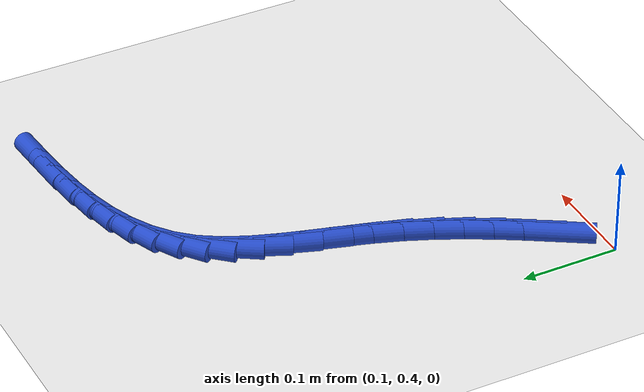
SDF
<sdf version="1.6">
 <world name="default">
  <model name="ground_plane">
   <static>1</static>
   <link name="link">
    <collision name="collision">
     <geometry><plane><normal>0 0 1</normal><size>100 100</size></plane></geometry>
     <surface><friction><ode><mu>100</mu><mu2>50</mu2></ode></friction></surface>
    </collision>
    <visual name="visual">
     <cast_shadows>0</cast_shadows>
     <geometry><plane><normal>0 0 1</normal><size>100 100</size></plane></geometry>
     <material>
      <script><uri>file://media/materials/scripts/gazebo.material</uri><name>Gazebo/WhiteGlow</name></script>
     </material>
    </visual>
   </link>
  </model>
  <model name="line">
   <link name="link_17">
    <pose>0.14076407731380272 0.4437502137127334 0.01 0 1.57 1.0201691608739643</pose>
    <collision name="collision">
     <geometry><cylinder><radius>0.01</radius><length>0.08</length></cylinder></geometry>
    </collision>
    <visual name="visual">
     <material>
      <script><name>Gazebo/Blue</name><uri>file://media/materials/scripts/gazebo.material</uri></script>
     </material>
     <geometry><cylinder><radius>0.01</radius><length>0.08</length></cylinder></geometry>
    </visual>
   </link>
   <link name="link_18">
    <pose>0.15560655853399247 0.467924877635556 0.01 0 1.57 1.0446850118273008</pose>
    <collision name="collision">
     <geometry><cylinder><radius>0.01</radius><length>0.08</length></cylinder></geometry>
    </collision>
    <visual name="visual">
     <material>
      <script><name>Gazebo/Blue</name><uri>file://media/materials/scripts/gazebo.material</uri></script>
     </material>
     <geometry><cylinder><radius>0.01</radius><length>0.08</length></cylinder></geometry>
    </visual>
   </link>
   <link name="link_19">
    <pose>0.16991934597477346 0.4925721298953077 0.01 0 1.57 1.0787321085161339</pose>
    <collision name="collision">
     <geometry><cylinder><radius>0.01</radius><length>0.08</length></cylinder></geometry>
    </collision>
    <visual name="visual">
     <material>
      <script><name>Gazebo/Blue</name><uri>file://media/materials/scripts/gazebo.material</uri></script>
     </material>
     <geometry><cylinder><radius>0.01</radius><length>0.08</length></cylinder></geometry>
    </visual>
   </link>
   <link name="link_20">
    <pose>0.18345914127521995 0.5178309360497088 0.01 0 1.57 1.1220574963081096</pose>
    <collision name="collision">
     <geometry><cylinder><radius>0.01</radius><length>0.08</length></cylinder></geometry>
    </collision>
    <visual name="visual">
     <material>
      <script><name>Gazebo/Blue</name><uri>file://media/materials/scripts/gazebo.material</uri></script>
     </material>
     <geometry><cylinder><radius>0.01</radius><length>0.08</length></cylinder></geometry>
    </visual>
   </link>
   <link name="link_21">
    <pose>0.19598264607440585 0.543840261656479 0.01 0 1.57 1.1742301397448864</pose>
    <collision name="collision">
     <geometry><cylinder><radius>0.01</radius><length>0.08</length></cylinder></geometry>
    </collision>
    <visual name="visual">
     <material>
      <script><name>Gazebo/Blue</name><uri>file://media/materials/scripts/gazebo.material</uri></script>
     </material>
     <geometry><cylinder><radius>0.01</radius><length>0.08</length></cylinder></geometry>
    </visual>
   </link>
   <link name="link_22">
    <pose>0.2072465620114053 0.5707390722733385 0.01 0 1.57 1.233449453714175</pose>
    <collision name="collision">
     <geometry><cylinder><radius>0.01</radius><length>0.08</length></cylinder></geometry>
    </collision>
    <visual name="visual">
     <material>
      <script><name>Gazebo/Blue</name><uri>file://media/materials/scripts/gazebo.material</uri></script>
     </material>
     <geometry><cylinder><radius>0.01</radius><length>0.08</length></cylinder></geometry>
    </visual>
   </link>
   <link name="link_23">
    <pose>0.2170339715433079 0.5986429421226758 0.01 0 1.57 1.279112003295565</pose>
    <collision name="collision">
     <geometry><cylinder><radius>0.01</radius><length>0.08</length></cylinder></geometry>
    </collision>
    <visual name="visual">
     <material>
      <script><name>Gazebo/Blue</name><uri>file://media/materials/scripts/gazebo.material</uri></script>
     </material>
     <geometry><cylinder><radius>0.01</radius><length>0.08</length></cylinder></geometry>
    </visual>
   </link>
   <link name="link_24">
    <pose>0.22561804754991704 0.6272328922066633 0.01 0 1.57 1.2949888499130187</pose>
    <collision name="collision">
     <geometry><cylinder><radius>0.01</radius><length>0.08</length></cylinder></geometry>
    </collision>
    <visual name="visual">
     <material>
      <script><name>Gazebo/Blue</name><uri>file://media/materials/scripts/gazebo.material</uri></script>
     </material>
     <geometry><cylinder><radius>0.01</radius><length>0.08</length></cylinder></geometry>
    </visual>
   </link>
   <link name="link_25">
    <pose>0.233704855109308 0.6558061068107246 0.01 0 1.57 1.280712569614745</pose>
    <collision name="collision">
     <geometry><cylinder><radius>0.01</radius><length>0.08</length></cylinder></geometry>
    </collision>
    <visual name="visual">
     <material>
      <script><name>Gazebo/Blue</name><uri>file://media/materials/scripts/gazebo.material</uri></script>
     </material>
     <geometry><cylinder><radius>0.01</radius><length>0.08</length></cylinder></geometry>
    </visual>
   </link>
   <link name="link_26">
    <pose>0.24201534521463663 0.6836465711818305 0.01 0 1.57 1.2335130614606669</pose>
    <collision name="collision">
     <geometry><cylinder><radius>0.01</radius><length>0.08</length></cylinder></geometry>
    </collision>
    <visual name="visual">
     <material>
      <script><name>Gazebo/Blue</name><uri>file://media/materials/scripts/gazebo.material</uri></script>
     </material>
     <geometry><cylinder><radius>0.01</radius><length>0.08</length></cylinder></geometry>
    </visual>
   </link>
   <link name="link_27">
    <pose>0.2512704688590588 0.7100382705669519 0.01 0 1.57 1.1473043243663825</pose>
    <collision name="collision">
     <geometry><cylinder><radius>0.01</radius><length>0.08</length></cylinder></geometry>
    </collision>
    <visual name="visual">
     <material>
      <script><name>Gazebo/Blue</name><uri>file://media/materials/scripts/gazebo.material</uri></script>
     </material>
     <geometry><cylinder><radius>0.01</radius><length>0.08</length></cylinder></geometry>
    </visual>
   </link>
   <link name="link_28">
    <pose>0.2621911770357306 0.7342651902130609 0.01 0 1.57 1.0133469281932523</pose>
    <collision name="collision">
     <geometry><cylinder><radius>0.01</radius><length>0.08</length></cylinder></geometry>
    </collision>
    <visual name="visual">
     <material>
      <script><name>Gazebo/Blue</name><uri>file://media/materials/scripts/gazebo.material</uri></script>
     </material>
     <geometry><cylinder><radius>0.01</radius><length>0.08</length></cylinder></geometry>
    </visual>
   </link>
   <link name="link_29">
    <pose>0.27549840537468545 0.7556113318411133 0.01 0 1.57 0.8359203690613224</pose>
    <collision name="collision">
     <geometry><cylinder><radius>0.01</radius><length>0.08</length></cylinder></geometry>
    </collision>
    <visual name="visual">
     <material>
      <script><name>Gazebo/Blue</name><uri>file://media/materials/scripts/gazebo.material</uri></script>
     </material>
     <geometry><cylinder><radius>0.01</radius><length>0.08</length></cylinder></geometry>
    </visual>
   </link>
   <link name="link_30">
    <pose>0.2917231918221372 0.7735643258024689 0.01 0 1.57 0.6601715932691534</pose>
    <collision name="collision">
     <geometry><cylinder><radius>0.01</radius><length>0.08</length></cylinder></geometry>
    </collision>
    <visual name="visual">
     <material>
      <script><name>Gazebo/Blue</name><uri>file://media/materials/scripts/gazebo.material</uri></script>
     </material>
     <geometry><cylinder><radius>0.01</radius><length>0.08</length></cylinder></geometry>
    </visual>
   </link>
   <link name="link_31">
    <pose>0.31073310770774487 0.7883232423972535 0.01 0 1.57 0.5058495002809777</pose>
    <collision name="collision">
     <geometry><cylinder><radius>0.01</radius><length>0.08</length></cylinder></geometry>
    </collision>
    <visual name="visual">
     <material>
      <script><name>Gazebo/Blue</name><uri>file://media/materials/scripts/gazebo.material</uri></script>
     </material>
     <geometry><cylinder><radius>0.01</radius><length>0.08</length></cylinder></geometry>
    </visual>
   </link>
   <link name="link_32">
    <pose>0.33225091421048747 0.8002424328750943 0.01 0 1.57 0.37812400585318784</pose>
    <collision name="collision">
     <geometry><cylinder><radius>0.01</radius><length>0.08</length></cylinder></geometry>
    </collision>
    <visual name="visual">
     <material>
      <script><name>Gazebo/Blue</name><uri>file://media/materials/scripts/gazebo.material</uri></script>
     </material>
     <geometry><cylinder><radius>0.01</radius><length>0.08</length></cylinder></geometry>
    </visual>
   </link>
   <link name="link_33">
    <pose>0.355999372509344 0.8096762484856186 0.01 0 1.57 0.2768386250746045</pose>
    <collision name="collision">
     <geometry><cylinder><radius>0.01</radius><length>0.08</length></cylinder></geometry>
    </collision>
    <visual name="visual">
     <material>
      <script><name>Gazebo/Blue</name><uri>file://media/materials/scripts/gazebo.material</uri></script>
     </material>
     <geometry><cylinder><radius>0.01</radius><length>0.08</length></cylinder></geometry>
    </visual>
   </link>
   <link name="link_34">
    <pose>0.3817012437832932 0.8169790404784529 0.01 0 1.57 0.19916889863321954</pose>
    <collision name="collision">
     <geometry><cylinder><radius>0.01</radius><length>0.08</length></cylinder></geometry>
    </collision>
    <visual name="visual">
     <material>
      <script><name>Gazebo/Blue</name><uri>file://media/materials/scripts/gazebo.material</uri></script>
     </material>
     <geometry><cylinder><radius>0.01</radius><length>0.08</length></cylinder></geometry>
    </visual>
   </link>
   <link name="link_35">
    <pose>0.4090792892113141 0.8225051601032244 0.01 0 1.57 0.14165189277365298</pose>
    <collision name="collision">
     <geometry><cylinder><radius>0.01</radius><length>0.08</length></cylinder></geometry>
    </collision>
    <visual name="visual">
     <material>
      <script><name>Gazebo/Blue</name><uri>file://media/materials/scripts/gazebo.material</uri></script>
     </material>
     <geometry><cylinder><radius>0.01</radius><length>0.08</length></cylinder></geometry>
    </visual>
   </link>
   <link name="link_36">
    <pose>0.4378562699723855 0.8266089586095599 0.01 0 1.57 0.10119042187298158</pose>
    <collision name="collision">
     <geometry><cylinder><radius>0.01</radius><length>0.08</length></cylinder></geometry>
    </collision>
    <visual name="visual">
     <material>
      <script><name>Gazebo/Blue</name><uri>file://media/materials/scripts/gazebo.material</uri></script>
     </material>
     <geometry><cylinder><radius>0.01</radius><length>0.08</length></cylinder></geometry>
    </visual>
   </link>
   <link name="link_37">
    <pose>0.46775494724548655 0.8296447872470865 0.01 0 1.57 0.07539271746639593</pose>
    <collision name="collision">
     <geometry><cylinder><radius>0.01</radius><length>0.08</length></cylinder></geometry>
    </collision>
    <visual name="visual">
     <material>
      <script><name>Gazebo/Blue</name><uri>file://media/materials/scripts/gazebo.material</uri></script>
     </material>
     <geometry><cylinder><radius>0.01</radius><length>0.08</length></cylinder></geometry>
    </visual>
   </link>
  </model>
 </world>
</sdf>
